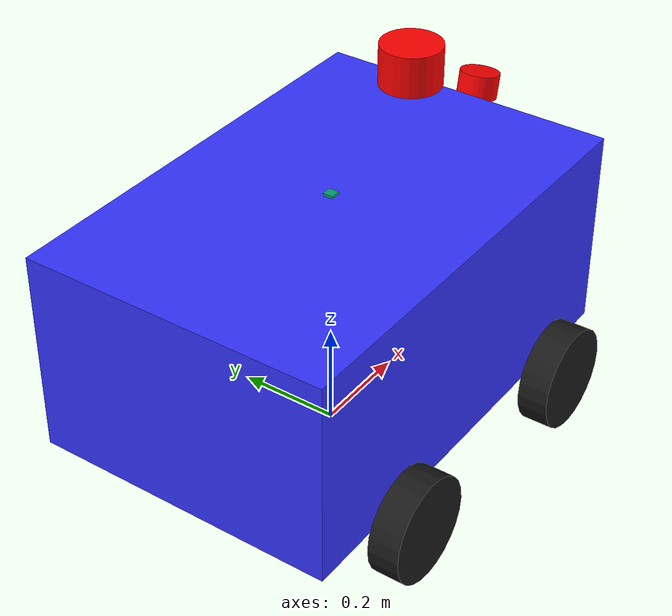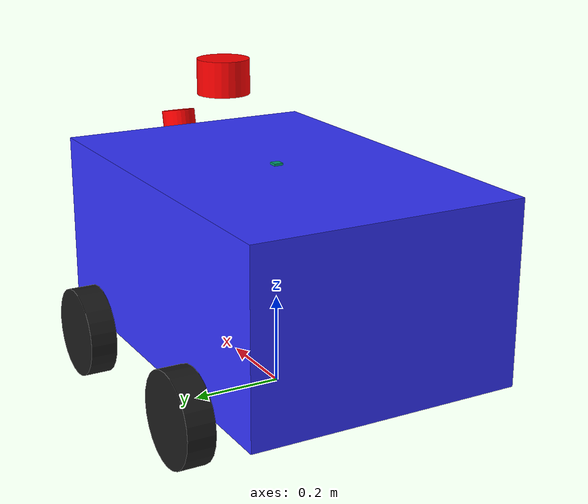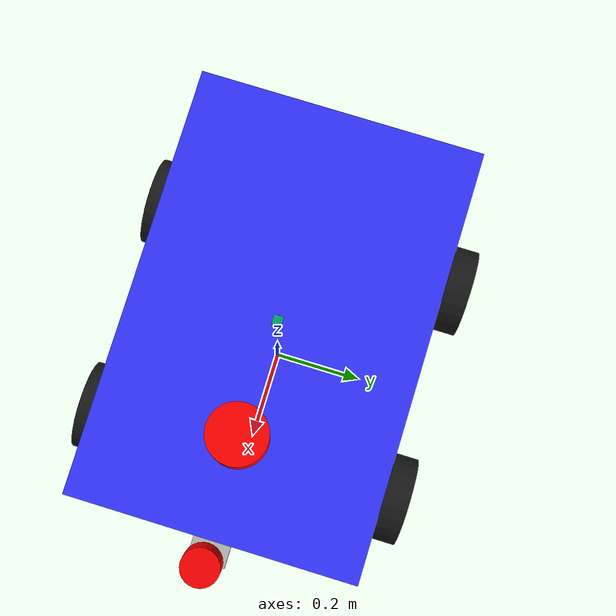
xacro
<?xml version="1.0"?>
<robot xmlns:xacro="http://www.ros.org/wiki/xacro" name="navibot">

  <!-- DÉFINITION DE PI -->
  <xacro:property name="pi" value="3.1415926535897931"/>

  <!-- PARAMÈTRES -->
  <xacro:property name="base_length" value="0.9"/>
  <xacro:property name="base_width" value="0.6"/>
  <xacro:property name="base_height" value="0.4"/>
  <xacro:property name="wheel_radius" value="0.10"/>
  <xacro:property name="wheel_width" value="0.06"/>
  <xacro:property name="wheel_ygap" value="0.05"/>
  <xacro:property name="wheel_xoff" value="0.25"/>

  <!-- COULEURS -->
  <material name="blue"><color rgba="0.2 0.2 1.0 1.0"/></material>
  <material name="black"><color rgba="0.1 0.1 0.1 1.0"/></material>
  <material name="red"><color rgba="1.0 0.0 0.0 1.0"/></material>

  <!-- ==================== MACROS D'INERTIE ==================== -->

  <!-- Boîte alignée sur les axes du link (x=length, y=width, z=height) -->
  <xacro:macro name="box_inertia" params="mass x y z">
    <inertial>
      <mass value="${mass}"/>
      <inertia
        ixx="${(1.0/12.0) * mass * (y*y + z*z)}" ixy="0" ixz="0"
        iyy="${(1.0/12.0) * mass * (x*x + z*z)}" iyz="0"
        izz="${(1.0/12.0) * mass * (x*x + y*y)}"/>
    </inertial>
  </xacro:macro>

  <!-- Cylindre dont l'axe coïncide avec Z du link -->
  <xacro:macro name="cylinder_inertia" params="mass radius length">
    <inertial>
      <mass value="${mass}"/>
      <inertia
        ixx="${(1.0/12.0) * mass * (3.0*radius*radius + length*length)}" ixy="0" ixz="0"
        iyy="${(1.0/12.0) * mass * (3.0*radius*radius + length*length)}" iyz="0"
        izz="${0.5 * mass * radius*radius}"/>
    </inertial>
  </xacro:macro>

  <!-- BASE_LINK -->
  <link name="base_footprint"/>

  <joint name="base_joint" type="fixed">
    <parent link="base_footprint"/><child link="base_link"/>
    <origin xyz="0 0 ${wheel_radius + base_height/2}"/>
  </joint>

  <link name="base_link">
    <visual><geometry><box size="${base_length} ${base_width} ${base_height}"/></geometry><material name="blue"/></visual>
    <collision><geometry><box size="${base_length} ${base_width} ${base_height}"/></geometry></collision>
    <xacro:box_inertia mass="40.0" x="${base_length}" y="${base_width}" z="${base_height}"/>
  </link>

   <!-- ==================== ROUES (MACRO AVEC LIMITES) ==================== -->
  <xacro:macro name="wheel" params="prefix x_offset y_offset">
    <link name="${prefix}_wheel">
      <visual><geometry><cylinder radius="${wheel_radius}" length="${wheel_width}"/></geometry><material name="black"/></visual>
      <collision><geometry><cylinder radius="${wheel_radius}" length="${wheel_width}"/></geometry></collision>
      <xacro:cylinder_inertia mass="2.0" radius="${wheel_radius}" length="${wheel_width}"/>
    </link>
    <joint name="${prefix}_wheel_joint" type="continuous">
      <parent link="base_link"/><child link="${prefix}_wheel"/>
      <origin xyz="${x_offset} ${y_offset} -${base_height/2}" rpy="-${pi/2} 0 0"/>
      <axis xyz="0 0 1"/>
      <!-- ⭐ AJOUT DES LIMITES PHYSIQUES POUR GAZEBO ⭐ -->
      <limit lower="-20" upper="20" effort="100" velocity="10"/>
    </joint>
  </xacro:macro>

  <!-- ROUES AVANT (MOTRICES) -->
  <xacro:wheel prefix="front_left" x_offset="${wheel_xoff}" y_offset="${base_width/2 + wheel_ygap}"/>
  <xacro:wheel prefix="front_right" x_offset="${wheel_xoff}" y_offset="-${base_width/2 + wheel_ygap}"/>

  <!-- ==================== ROUES ARRIÈRE (SKID STEER AVEC LIMITES) ==================== -->
  <link name="rear_left_wheel">
    <visual><geometry><cylinder radius="${wheel_radius}" length="${wheel_width}"/></geometry><material name="black"/></visual>
    <collision><geometry><cylinder radius="${wheel_radius}" length="${wheel_width}"/></geometry></collision>
    <xacro:cylinder_inertia mass="2.0" radius="${wheel_radius}" length="${wheel_width}"/>
  </link>
  <joint name="rear_left_wheel_joint" type="continuous">
    <parent link="base_link"/><child link="rear_left_wheel"/>
    <origin xyz="-${wheel_xoff} ${base_width/2 + wheel_ygap} -${base_height/2}" rpy="-${pi/2} 0 0"/>
    <axis xyz="0 0 1"/>
    <!-- ⭐ AJOUT DES LIMITES PHYSIQUES POUR GAZEBO ⭐ -->
    <limit lower="-20" upper="20" effort="100" velocity="10"/>
  </joint>

  <link name="rear_right_wheel">
    <visual><geometry><cylinder radius="${wheel_radius}" length="${wheel_width}"/></geometry><material name="black"/></visual>
    <collision><geometry><cylinder radius="${wheel_radius}" length="${wheel_width}"/></geometry></collision>
    <xacro:cylinder_inertia mass="2.0" radius="${wheel_radius}" length="${wheel_width}"/>
  </link>
  <joint name="rear_right_wheel_joint" type="continuous">
    <parent link="base_link"/><child link="rear_right_wheel"/>
    <origin xyz="-${wheel_xoff} -${base_width/2 + wheel_ygap} -${base_height/2}" rpy="-${pi/2} 0 0"/>
    <axis xyz="0 0 1"/>
    <!-- ⭐ AJOUT DES LIMITES PHYSIQUES POUR GAZEBO ⭐ -->
    <limit lower="-20" upper="20" effort="100" velocity="10"/>
  </joint>
  <!-- ==================== CAPTEURS ==================== -->

  <!-- 1. LIDAR (Principal 360°) -->
  <link name="lidar_link">
    <visual><geometry><cylinder radius="0.06" length="0.08"/></geometry><material name="red"/></visual>
    <collision><geometry><cylinder radius="0.06" length="0.08"/></geometry></collision>
    <xacro:cylinder_inertia mass="0.5" radius="0.06" length="0.08"/>
  </link>
  <joint name="lidar_joint" type="fixed">
    <parent link="base_link"/>
    <child link="lidar_link"/>
    <origin xyz="0.25 0 ${base_height/2 + 0.15}" rpy="0 0 0"/>  <!-- raised to 0.35 m -->

  </joint>

  <!-- 2. CAMERA (Architecture optique RGB-D, pilotée en RGB pour stabilité système) -->
  <link name="camera_link">
    <visual><geometry><box size="0.05 0.08 0.03"/></geometry></visual>
    <collision><geometry><box size="0.05 0.08 0.03"/></geometry></collision>
    <xacro:box_inertia mass="0.1" x="0.05" y="0.08" z="0.03"/>
  </link>
  <joint name="camera_joint" type="fixed">
    <parent link="base_link"/><child link="camera_link"/>
    <origin xyz="${base_length/2 + 0.025} 0 0.05" rpy="0 0 0"/>
  </joint>

  <!-- Lien optique standard -->
  <link name="camera_optical_link"/>
  <joint name="camera_optical_joint" type="fixed">
    <parent link="camera_link"/><child link="camera_optical_link"/>
    <origin xyz="0 0 0" rpy="-${pi/2} 0 -${pi/2}"/>
  </joint>

  <!-- 3. LIDAR 2D INCLINÉ — Anti-collision pour obstacles bas en avant -->
  <!-- NB: ce capteur est un LaserScan 2D (un seul plan), pas un LiDAR 3D. -->
  <link name="lidar_obstacles_bas_link">
    <visual>
      <geometry><cylinder radius="0.04" length="0.05"/></geometry>
      <material name="red"/>
    </visual>
    <collision>
      <geometry><cylinder radius="0.04" length="0.05"/></geometry>
    </collision>
    <xacro:cylinder_inertia mass="0.1" radius="0.04" length="0.05"/>
  </link>

  <joint name="lidar_obstacles_bas_joint" type="fixed">
    <parent link="base_link"/>
    <child link="lidar_obstacles_bas_link"/>
    <origin xyz="${base_length/2 + 0.05} 0 0.2" rpy="0 0.2 0"/>
  </joint>

  <gazebo reference="lidar_obstacles_bas_joint">
    <preserveFixedJoint>true</preserveFixedJoint>
    <disableFixedJointLumping>true</disableFixedJointLumping>
  </gazebo>

  <!-- 4. IMU -->
  <link name="imu_link">
    <visual><geometry><box size="0.02 0.02 0.01"/></geometry></visual>
    <xacro:box_inertia mass="0.01" x="0.02" y="0.02" z="0.01"/>
  </link>
  <joint name="imu_joint" type="fixed">
    <parent link="base_link"/><child link="imu_link"/>
    <origin xyz="0 0 ${base_height/2}"/>
  </joint>

   <!-- ==================== PLUGINS GAZEBO ==================== -->

  <!-- ⭐ PLUGIN AVANT : Contrôle les roues AVANT + PUBLIE L'ODOMÉTRIE ⭐ -->
  <gazebo>
    <plugin name="diff_drive_front" filename="libgazebo_ros_diff_drive.so">
      <update_rate>50</update_rate>
      <left_joint>front_left_wheel_joint</left_joint>
      <right_joint>front_right_wheel_joint</right_joint>
      <wheel_separation>0.7</wheel_separation>
      <wheel_diameter>0.20</wheel_diameter>
      <max_wheel_torque>20</max_wheel_torque>
      <command_topic>/cmd_vel_safe</command_topic>
      <odometry_topic>/odom</odometry_topic>
      <odometry_frame>odom</odometry_frame>
      <robot_base_frame>base_footprint</robot_base_frame>
      <!-- Ce plugin (avant) est l'unique source d'odométrie ET de la TF
           odom -> base_footprint. Le plugin arrière a publish_odom=false
           pour éviter le double publisher. -->
      <publish_odom>true</publish_odom>
      <publish_odom_tf>true</publish_odom_tf>
    </plugin>
  </gazebo>

  <!-- ⭐ PLUGIN ARRIÈRE : Contrôle les roues ARRIÈRE SANS PUBLIER L'ODOMÉTRIE ⭐ -->
  <gazebo>
    <plugin name="diff_drive_rear" filename="libgazebo_ros_diff_drive.so">
      <update_rate>50</update_rate>
      <left_joint>rear_left_wheel_joint</left_joint>
      <right_joint>rear_right_wheel_joint</right_joint>
      <wheel_separation>0.7</wheel_separation>
      <wheel_diameter>0.20</wheel_diameter>
      <max_wheel_torque>20</max_wheel_torque>
      <command_topic>/cmd_vel_safe</command_topic>
      <!-- ⬅️ CRITIQUE : ON DÉSACTIVE L'ODOMÉTRIE POUR ÉVITER LE CONFLIT ⬅️ -->
      <publish_odom>false</publish_odom>
      <publish_odom_tf>false</publish_odom_tf>
    </plugin>
  </gazebo>

  <!-- Joint State Publisher -->
  <gazebo>
    <plugin name="joint_state_publisher" filename="libgazebo_ros_joint_state_publisher.so">
      <update_rate>50</update_rate>
      <joint_name>front_left_wheel_joint</joint_name>
      <joint_name>front_right_wheel_joint</joint_name>
      <joint_name>rear_left_wheel_joint</joint_name>
      <joint_name>rear_right_wheel_joint</joint_name>
    </plugin>
  </gazebo>

  <!-- LiDAR Principal Plugin -->
  <gazebo reference="lidar_link">
    <sensor type="ray" name="laser">
      <pose>0 0 0 0 0 0</pose>
      <visualize>true</visualize>
      <update_rate>10</update_rate>
      <ray>
        <scan>
          <horizontal>
            <samples>360</samples>
            <resolution>1</resolution>
            <min_angle>-3.14159</min_angle>
            <max_angle>3.14159</max_angle>
          </horizontal>
        </scan>
        <range>
          <min>0.15</min>
          <max>12.0</max>
          <resolution>0.015</resolution>
        </range>
        <noise>
          <type>gaussian</type>
          <mean>0.0</mean>
          <stddev>0.01</stddev>
        </noise>
      </ray>
      <plugin name="scan_plugin" filename="libgazebo_ros_ray_sensor.so">
        <ros>
          <remapping>~/out:=/scan</remapping>
        </ros>
        <output_type>sensor_msgs/LaserScan</output_type>
        <frame_name>lidar_link</frame_name>
      </plugin>
    </sensor>
  </gazebo>

  <!-- LiDAR 2D INCLINÉ — demi-cercle avant pour anticollision basse -->
  <gazebo reference="lidar_obstacles_bas_link">
    <sensor type="ray" name="laser_obstacles_bas">
      <pose>0 0 0 0 0 0</pose>
      <visualize>true</visualize>
      <update_rate>10</update_rate>
      <ray>
        <scan>
          <horizontal>
            <samples>180</samples>
            <resolution>1</resolution>
            <min_angle>-1.57079</min_angle>
            <max_angle>1.57079</max_angle>
          </horizontal>
        </scan>
        <range>
          <min>0.1</min>
          <max>2.0</max>
          <resolution>0.015</resolution>
        </range>
        <noise>
          <type>gaussian</type>
          <mean>0.0</mean>
          <stddev>0.01</stddev>
        </noise>
      </ray>
      <plugin name="plugin_scan_obstacles_bas" filename="libgazebo_ros_ray_sensor.so">
        <ros>
          <remapping>~/out:=/scan_obstacles_bas</remapping>
        </ros>
        <output_type>sensor_msgs/LaserScan</output_type>
        <frame_name>lidar_obstacles_bas_link</frame_name>
      </plugin>
    </sensor>
  </gazebo>

  <!-- ⭐⭐⭐ Camera Plugin (Sécurisé : Utilise RGB car Depth .so est absent du système) ⭐⭐⭐ -->
  <gazebo reference="camera_link">
    <sensor type="camera" name="camera_sensor">
      <update_rate>15.0</update_rate>
      <camera name="head">
        <horizontal_fov>1.3962634</horizontal_fov>
        <image>
          <width>320</width>
          <height>240</height>
        </image>
        <clip>
          <near>0.1</near>
          <far>300</far>
        </clip>
      </camera>

      <plugin name="camera_controller" filename="libgazebo_ros_camera.so">
        <ros>
          <namespace>/camera</namespace>
          <remapping>image_raw:=image_raw</remapping>
          <remapping>camera_info:=camera_info</remapping>
        </ros>
        <frame_name>camera_optical_link</frame_name>
      </plugin>
    </sensor>
  </gazebo>

  <!-- IMU Plugin -->
  <gazebo reference="imu_link">
    <sensor type="imu" name="imu_sensor">
      <always_on>true</always_on>
      <update_rate>50</update_rate>
      <imu>
        <angular_velocity><x><noise type="gaussian"><mean>0</mean><stddev>0.01</stddev></noise></x><y><noise type="gaussian"><mean>0</mean><stddev>0.01</stddev></noise></y><z><noise type="gaussian"><mean>0</mean><stddev>0.01</stddev></noise></z></angular_velocity>
        <linear_acceleration><x><noise type="gaussian"><mean>0</mean><stddev>0.017</stddev></noise></x><y><noise type="gaussian"><mean>0</mean><stddev>0.017</stddev></noise></y><z><noise type="gaussian"><mean>0</mean><stddev>0.017</stddev></noise></z></linear_acceleration>
      </imu>
      <plugin name="imu_plugin" filename="libgazebo_ros_imu_sensor.so">
        <ros>
          <remapping>~/out:=/imu</remapping>
        </ros>
        <initial_orientation_as_reference>false</initial_orientation_as_reference>
        <frame_name>imu_link</frame_name>
      </plugin>
    </sensor>
  </gazebo>

</robot>
